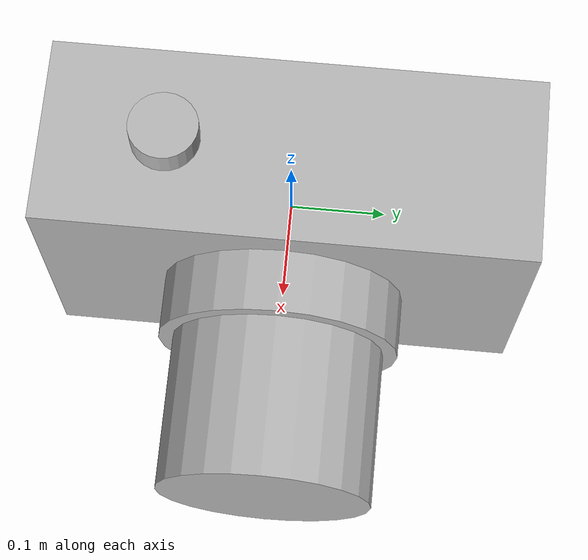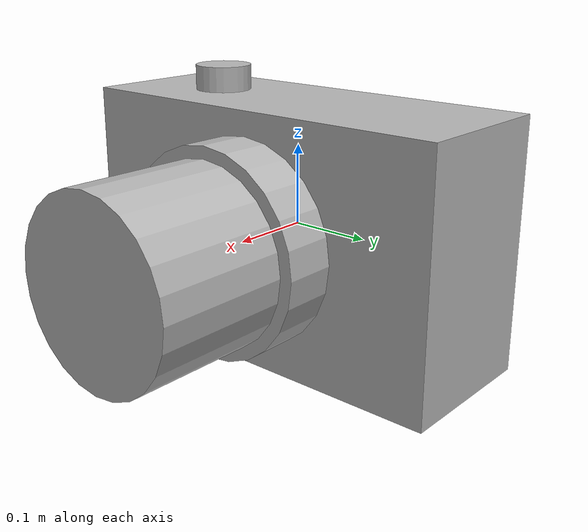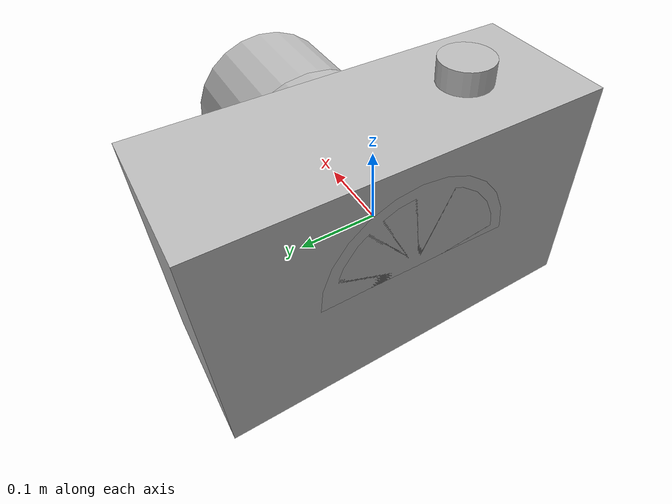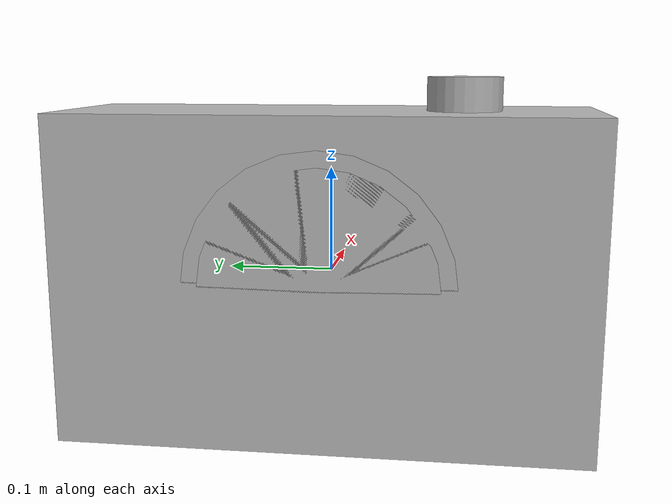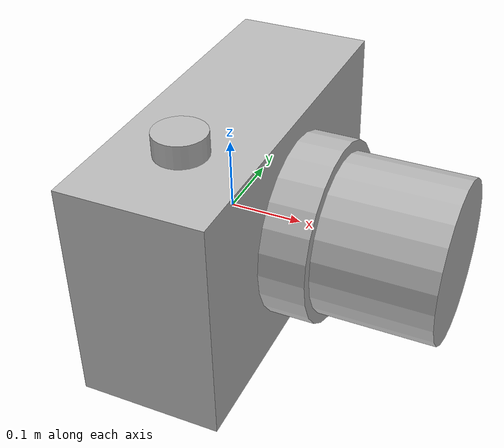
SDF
<!--
  Forward camera for testing

  The URDF to SDF converter (`gz sdf -p foo.urdf`) gave odd results, including 2 gravity tags.
  So... just hand-edit this SDF file.
-->
<sdf version='1.6'>
    <model name='forward_camera'>
        <link name='base_link'>
            <pose frame=''>0 0 0 0 -0 0</pose>
            <inertial> <!-- inertial tag is REQUIRED for Gazebo -->
                <pose frame=''>0 0 0 0 -0 0</pose>
                <mass>1</mass>
                <inertia>
                    <ixx>0.1</ixx>
                    <ixy>0</ixy>
                    <ixz>0</ixz>
                    <iyy>0.1</iyy>
                    <iyz>0</iyz>
                    <izz>0.1</izz>
                </inertia>
            </inertial>
            <collision name='base_link_collision'>
                <pose frame=''>0 0 0 0 -0 0</pose>
                <geometry>
                    <box>
                        <size>0.190983004 0.5 0.309016994</size>
                    </box>
                </geometry>
                <surface>
                    <contact>
                        <ode/>
                    </contact>
                    <friction>
                        <ode/>
                    </friction>
                </surface>
            </collision>
            <visual name='base_link_visual'>
                <pose frame=''>0 0 0 0 -0 0</pose>
                <geometry>
                    <box>
                        <size>0.190983004 0.5 0.309016994</size>
                    </box>
                </geometry>
                <material>
                    <script>
                        <uri>__default__</uri>
                        <name>__default__</name>
                    </script>
                </material>
            </visual>
            <visual name='aperture_ring_visual'>
                <pose frame=''>0.03125 0 0 0 1.57079 0</pose>
                <geometry>
                    <cylinder>
                        <radius>0.125</radius>
                        <length>0.253483004</length>
                    </cylinder>
                </geometry>
                <material>
                    <script>
                        <uri>__default__</uri>
                        <name>__default__</name>
                    </script>
                </material>
            </visual>
            <visual name='lens_visual'>
                <pose frame=''>0.11125 0 0 0 1.57079 0</pose>
                <geometry>
                    <cylinder>
                        <radius>0.110</radius>
                        <length>0.413483004</length>
                    </cylinder>
                </geometry>
                <material>
                    <script>
                        <uri>__default__</uri>
                        <name>__default__</name>
                    </script>
                </material>
            </visual>
            <visual name='shutter_button_visual'>
                <pose frame=''>0 -0.125 0.170133497 0 0 0</pose>
                <geometry>
                    <cylinder>
                        <radius>0.035</radius>
                        <length>0.03125</length>
                    </cylinder>
                </geometry>
                <material>
                    <script>
                        <uri>__default__</uri>
                        <name>__default__</name>
                    </script>
                </material>
            </visual>
            <sensor type="camera" name="forward_camera">
                <update_rate>15</update_rate>
                <camera name="head">
                    <horizontal_fov>1.4</horizontal_fov>
                    <image>
                        <width>800</width>
                        <height>600</height>
                        <format>R8G8B8</format>
                    </image>
                    <clip>
                        <near>0.02</near>
                        <far>300</far>
                    </clip>
                    <noise>
                        <type>gaussian</type>
                        <mean>0.0</mean>
                        <stddev>0.1</stddev>
                    </noise>
                </camera>
                <plugin name="forward_camera_controller" filename="libgazebo_ros_camera.so">
                    <alwaysOn>true</alwaysOn>
                    <updateRate>0.0</updateRate>
                    <cameraName>orca/forward_camera</cameraName>
                    <imageTopicName>image_raw</imageTopicName>
                    <cameraInfoTopicName>camera_info</cameraInfoTopicName>
                    <frameName>forward_camera</frameName>
                    <hackBaseline>0.07</hackBaseline>
                    <distortionK1>0.0</distortionK1>
                    <distortionK2>0.0</distortionK2>
                    <distortionK3>0.0</distortionK3>
                    <distortionT1>0.0</distortionT1>
                    <distortionT2>0.0</distortionT2>
                </plugin>
            </sensor>
            <gravity>0</gravity> <!-- Turn gravity off -->
        </link>
        <plugin name="MotionPlugin" filename="libMotionPlugin.so">
            <link name="base_link">
                <duration>80000</duration>
                <period>80</period>
                <linear_vel>0.0 0.0 0.0</linear_vel>
                <angular_vel>0.0 0.0 0.157079633</angular_vel>
            </link>
        </plugin>
    </model>
</sdf>
